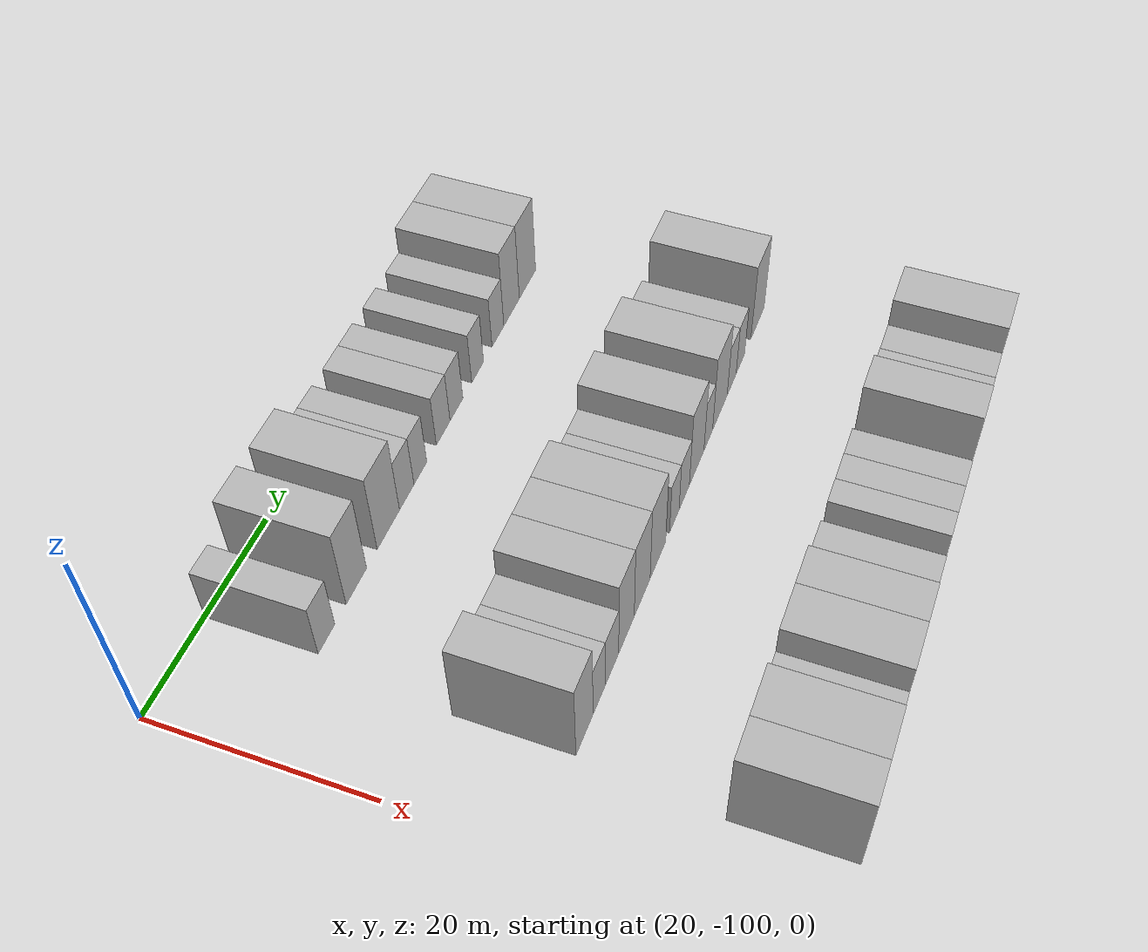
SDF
<sdf version="1.6">
 <world name="default">
  <model name="building_74">
   <static>1</static>
   <pose>25.0000 -88.8391 0 0.000000 0.000000 0.000000</pose>
   <link name="link">
    <pose>0 0 3.00 0 0 0</pose>
    <collision name="collision"><geometry><box><size>10.0000 2.8996 6.0000</size></box></geometry></collision>
    <visual name="visual">
     <cast_shadows>0</cast_shadows>
     <geometry><box><size>10.0000 2.8996 6.0000</size></box></geometry>
     <material>
      <script>
       <uri>model://HANNAS_wall/materials/scripts</uri>
       <uri>model://HANNAS_wall/materials/textures</uri>
       <name>vrc/HANNAS_wall</name>
      </script>
     </material>
    </visual>
   </link>
  </model>
  <model name="building_75">
   <static>1</static>
   <pose>25.0000 -83.5096 0 0.000000 0.000000 0.000000</pose>
   <link name="link">
    <pose>0 0 4.50 0 0 0</pose>
    <collision name="collision"><geometry><box><size>10.0000 3.7595 9.0000</size></box></geometry></collision>
    <visual name="visual">
     <cast_shadows>0</cast_shadows>
     <geometry><box><size>10.0000 3.7595 9.0000</size></box></geometry>
     <material>
      <script>
       <uri>model://HANNAS_wall/materials/scripts</uri>
       <uri>model://HANNAS_wall/materials/textures</uri>
       <name>vrc/HANNAS_wall</name>
      </script>
     </material>
    </visual>
   </link>
  </model>
  <model name="building_76">
   <static>1</static>
   <pose>25.0000 -77.4636 0 0.000000 0.000000 0.000000</pose>
   <link name="link">
    <pose>0 0 4.50 0 0 0</pose>
    <collision name="collision"><geometry><box><size>10.0000 4.3325 9.0000</size></box></geometry></collision>
    <visual name="visual">
     <cast_shadows>0</cast_shadows>
     <geometry><box><size>10.0000 4.3325 9.0000</size></box></geometry>
     <material>
      <script>
       <uri>model://HANNAS_wall/materials/scripts</uri>
       <uri>model://HANNAS_wall/materials/textures</uri>
       <name>vrc/HANNAS_wall</name>
      </script>
     </material>
    </visual>
   </link>
  </model>
  <model name="building_77">
   <static>1</static>
   <pose>25.0000 -73.8470 0 0.000000 0.000000 0.000000</pose>
   <link name="link">
    <pose>0 0 3.00 0 0 0</pose>
    <collision name="collision"><geometry><box><size>10.0000 2.9005 6.0000</size></box></geometry></collision>
    <visual name="visual">
     <cast_shadows>0</cast_shadows>
     <geometry><box><size>10.0000 2.9005 6.0000</size></box></geometry>
     <material>
      <script>
       <uri>model://HANNAS_wall/materials/scripts</uri>
       <uri>model://HANNAS_wall/materials/textures</uri>
       <name>vrc/HANNAS_wall</name>
      </script>
     </material>
    </visual>
   </link>
  </model>
  <model name="building_78">
   <static>1</static>
   <pose>25.0000 -71.0842 0 0.000000 0.000000 0.000000</pose>
   <link name="link">
    <pose>0 0 3.00 0 0 0</pose>
    <collision name="collision"><geometry><box><size>10.0000 2.6250 6.0000</size></box></geometry></collision>
    <visual name="visual">
     <cast_shadows>0</cast_shadows>
     <geometry><box><size>10.0000 2.6250 6.0000</size></box></geometry>
     <material>
      <script>
       <uri>model://HANNAS_wall/materials/scripts</uri>
       <uri>model://HANNAS_wall/materials/textures</uri>
       <name>vrc/HANNAS_wall</name>
      </script>
     </material>
    </visual>
   </link>
  </model>
  <model name="building_79">
   <static>1</static>
   <pose>25.0000 -66.2901 0 0.000000 0.000000 0.000000</pose>
   <link name="link">
    <pose>0 0 3.00 0 0 0</pose>
    <collision name="collision"><geometry><box><size>10.0000 2.9633 6.0000</size></box></geometry></collision>
    <visual name="visual">
     <cast_shadows>0</cast_shadows>
     <geometry><box><size>10.0000 2.9633 6.0000</size></box></geometry>
     <material>
      <script>
       <uri>model://HANNAS_wall/materials/scripts</uri>
       <uri>model://HANNAS_wall/materials/textures</uri>
       <name>vrc/HANNAS_wall</name>
      </script>
     </material>
    </visual>
   </link>
  </model>
  <model name="building_80">
   <static>1</static>
   <pose>25.0000 -63.4003 0 0.000000 0.000000 0.000000</pose>
   <link name="link">
    <pose>0 0 3.00 0 0 0</pose>
    <collision name="collision"><geometry><box><size>10.0000 2.8163 6.0000</size></box></geometry></collision>
    <visual name="visual">
     <cast_shadows>0</cast_shadows>
     <geometry><box><size>10.0000 2.8163 6.0000</size></box></geometry>
     <material>
      <script>
       <uri>model://HANNAS_wall/materials/scripts</uri>
       <uri>model://HANNAS_wall/materials/textures</uri>
       <name>vrc/HANNAS_wall</name>
      </script>
     </material>
    </visual>
   </link>
  </model>
  <model name="building_81">
   <static>1</static>
   <pose>25.0000 -58.6390 0 0.000000 0.000000 0.000000</pose>
   <link name="link">
    <pose>0 0 3.00 0 0 0</pose>
    <collision name="collision"><geometry><box><size>10.0000 2.7062 6.0000</size></box></geometry></collision>
    <visual name="visual">
     <cast_shadows>0</cast_shadows>
     <geometry><box><size>10.0000 2.7062 6.0000</size></box></geometry>
     <material>
      <script>
       <uri>model://HANNAS_wall/materials/scripts</uri>
       <uri>model://HANNAS_wall/materials/textures</uri>
       <name>vrc/HANNAS_wall</name>
      </script>
     </material>
    </visual>
   </link>
  </model>
  <model name="building_82">
   <static>1</static>
   <pose>25.0000 -53.8731 0 0.000000 0.000000 0.000000</pose>
   <link name="link">
    <pose>0 0 3.00 0 0 0</pose>
    <collision name="collision"><geometry><box><size>10.0000 2.8256 6.0000</size></box></geometry></collision>
    <visual name="visual">
     <cast_shadows>0</cast_shadows>
     <geometry><box><size>10.0000 2.8256 6.0000</size></box></geometry>
     <material>
      <script>
       <uri>model://HANNAS_wall/materials/scripts</uri>
       <uri>model://HANNAS_wall/materials/textures</uri>
       <name>vrc/HANNAS_wall</name>
      </script>
     </material>
    </visual>
   </link>
  </model>
  <model name="building_83">
   <static>1</static>
   <pose>25.0000 -50.5525 0 0.000000 0.000000 0.000000</pose>
   <link name="link">
    <pose>0 0 4.50 0 0 0</pose>
    <collision name="collision"><geometry><box><size>10.0000 3.8157 9.0000</size></box></geometry></collision>
    <visual name="visual">
     <cast_shadows>0</cast_shadows>
     <geometry><box><size>10.0000 3.8157 9.0000</size></box></geometry>
     <material>
      <script>
       <uri>model://HANNAS_wall/materials/scripts</uri>
       <uri>model://HANNAS_wall/materials/textures</uri>
       <name>vrc/HANNAS_wall</name>
      </script>
     </material>
    </visual>
   </link>
  </model>
  <model name="building_84">
   <static>1</static>
   <pose>25.0000 -46.5881 0 0.000000 0.000000 0.000000</pose>
   <link name="link">
    <pose>0 0 4.50 0 0 0</pose>
    <collision name="collision"><geometry><box><size>10.0000 4.1129 9.0000</size></box></geometry></collision>
    <visual name="visual">
     <cast_shadows>0</cast_shadows>
     <geometry><box><size>10.0000 4.1129 9.0000</size></box></geometry>
     <material>
      <script>
       <uri>model://HANNAS_wall/materials/scripts</uri>
       <uri>model://HANNAS_wall/materials/textures</uri>
       <name>vrc/HANNAS_wall</name>
      </script>
     </material>
    </visual>
   </link>
  </model>
  <model name="building_268">
   <static>1</static>
   <pose>47.0000 -89.8443 0 0.000000 0.000000 0.000000</pose>
   <link name="link">
    <pose>0 0 4.50 0 0 0</pose>
    <collision name="collision"><geometry><box><size>10.0000 3.6871 9.0000</size></box></geometry></collision>
    <visual name="visual">
     <cast_shadows>0</cast_shadows>
     <geometry><box><size>10.0000 3.6871 9.0000</size></box></geometry>
     <material>
      <script>
       <uri>model://HANNAS_wall/materials/scripts</uri>
       <uri>model://HANNAS_wall/materials/textures</uri>
       <name>vrc/HANNAS_wall</name>
      </script>
     </material>
    </visual>
   </link>
  </model>
  <model name="building_269">
   <static>1</static>
   <pose>47.0000 -86.6379 0 0.000000 0.000000 0.000000</pose>
   <link name="link">
    <pose>0 0 3.00 0 0 0</pose>
    <collision name="collision"><geometry><box><size>10.0000 2.7257 6.0000</size></box></geometry></collision>
    <visual name="visual">
     <cast_shadows>0</cast_shadows>
     <geometry><box><size>10.0000 2.7257 6.0000</size></box></geometry>
     <material>
      <script>
       <uri>model://HANNAS_wall/materials/scripts</uri>
       <uri>model://HANNAS_wall/materials/textures</uri>
       <name>vrc/HANNAS_wall</name>
      </script>
     </material>
    </visual>
   </link>
  </model>
  <model name="building_270">
   <static>1</static>
   <pose>47.0000 -83.7786 0 0.000000 0.000000 0.000000</pose>
   <link name="link">
    <pose>0 0 3.00 0 0 0</pose>
    <collision name="collision"><geometry><box><size>10.0000 2.9930 6.0000</size></box></geometry></collision>
    <visual name="visual">
     <cast_shadows>0</cast_shadows>
     <geometry><box><size>10.0000 2.9930 6.0000</size></box></geometry>
     <material>
      <script>
       <uri>model://HANNAS_wall/materials/scripts</uri>
       <uri>model://HANNAS_wall/materials/textures</uri>
       <name>vrc/HANNAS_wall</name>
      </script>
     </material>
    </visual>
   </link>
  </model>
  <model name="building_271">
   <static>1</static>
   <pose>47.0000 -80.4532 0 0.000000 0.000000 0.000000</pose>
   <link name="link">
    <pose>0 0 4.50 0 0 0</pose>
    <collision name="collision"><geometry><box><size>10.0000 3.6578 9.0000</size></box></geometry></collision>
    <visual name="visual">
     <cast_shadows>0</cast_shadows>
     <geometry><box><size>10.0000 3.6578 9.0000</size></box></geometry>
     <material>
      <script>
       <uri>model://HANNAS_wall/materials/scripts</uri>
       <uri>model://HANNAS_wall/materials/textures</uri>
       <name>vrc/HANNAS_wall</name>
      </script>
     </material>
    </visual>
   </link>
  </model>
  <model name="building_272">
   <static>1</static>
   <pose>47.0000 -76.6905 0 0.000000 0.000000 0.000000</pose>
   <link name="link">
    <pose>0 0 4.50 0 0 0</pose>
    <collision name="collision"><geometry><box><size>10.0000 3.8677 9.0000</size></box></geometry></collision>
    <visual name="visual">
     <cast_shadows>0</cast_shadows>
     <geometry><box><size>10.0000 3.8677 9.0000</size></box></geometry>
     <material>
      <script>
       <uri>model://HANNAS_wall/materials/scripts</uri>
       <uri>model://HANNAS_wall/materials/textures</uri>
       <name>vrc/HANNAS_wall</name>
      </script>
     </material>
    </visual>
   </link>
  </model>
  <model name="building_273">
   <static>1</static>
   <pose>47.0000 -72.7860 0 0.000000 0.000000 0.000000</pose>
   <link name="link">
    <pose>0 0 4.50 0 0 0</pose>
    <collision name="collision"><geometry><box><size>10.0000 3.9413 9.0000</size></box></geometry></collision>
    <visual name="visual">
     <cast_shadows>0</cast_shadows>
     <geometry><box><size>10.0000 3.9413 9.0000</size></box></geometry>
     <material>
      <script>
       <uri>model://HANNAS_wall/materials/scripts</uri>
       <uri>model://HANNAS_wall/materials/textures</uri>
       <name>vrc/HANNAS_wall</name>
      </script>
     </material>
    </visual>
   </link>
  </model>
  <model name="building_274">
   <static>1</static>
   <pose>47.0000 -68.5644 0 0.000000 0.000000 0.000000</pose>
   <link name="link">
    <pose>0 0 3.00 0 0 0</pose>
    <collision name="collision"><geometry><box><size>10.0000 2.5020 6.0000</size></box></geometry></collision>
    <visual name="visual">
     <cast_shadows>0</cast_shadows>
     <geometry><box><size>10.0000 2.5020 6.0000</size></box></geometry>
     <material>
      <script>
       <uri>model://HANNAS_wall/materials/scripts</uri>
       <uri>model://HANNAS_wall/materials/textures</uri>
       <name>vrc/HANNAS_wall</name>
      </script>
     </material>
    </visual>
   </link>
  </model>
  <model name="building_275">
   <static>1</static>
   <pose>47.0000 -65.9303 0 0.000000 0.000000 0.000000</pose>
   <link name="link">
    <pose>0 0 3.00 0 0 0</pose>
    <collision name="collision"><geometry><box><size>10.0000 2.7661 6.0000</size></box></geometry></collision>
    <visual name="visual">
     <cast_shadows>0</cast_shadows>
     <geometry><box><size>10.0000 2.7661 6.0000</size></box></geometry>
     <material>
      <script>
       <uri>model://HANNAS_wall/materials/scripts</uri>
       <uri>model://HANNAS_wall/materials/textures</uri>
       <name>vrc/HANNAS_wall</name>
      </script>
     </material>
    </visual>
   </link>
  </model>
  <model name="building_276">
   <static>1</static>
   <pose>47.0000 -62.5124 0 0.000000 0.000000 0.000000</pose>
   <link name="link">
    <pose>0 0 4.50 0 0 0</pose>
    <collision name="collision"><geometry><box><size>10.0000 4.0697 9.0000</size></box></geometry></collision>
    <visual name="visual">
     <cast_shadows>0</cast_shadows>
     <geometry><box><size>10.0000 4.0697 9.0000</size></box></geometry>
     <material>
      <script>
       <uri>model://HANNAS_wall/materials/scripts</uri>
       <uri>model://HANNAS_wall/materials/textures</uri>
       <name>vrc/HANNAS_wall</name>
      </script>
     </material>
    </visual>
   </link>
  </model>
  <model name="building_277">
   <static>1</static>
   <pose>47.0000 -59.2409 0 0.000000 0.000000 0.000000</pose>
   <link name="link">
    <pose>0 0 3.00 0 0 0</pose>
    <collision name="collision"><geometry><box><size>10.0000 2.4733 6.0000</size></box></geometry></collision>
    <visual name="visual">
     <cast_shadows>0</cast_shadows>
     <geometry><box><size>10.0000 2.4733 6.0000</size></box></geometry>
     <material>
      <script>
       <uri>model://HANNAS_wall/materials/scripts</uri>
       <uri>model://HANNAS_wall/materials/textures</uri>
       <name>vrc/HANNAS_wall</name>
      </script>
     </material>
    </visual>
   </link>
  </model>
  <model name="building_278">
   <static>1</static>
   <pose>47.0000 -55.8433 0 0.000000 0.000000 0.000000</pose>
   <link name="link">
    <pose>0 0 4.50 0 0 0</pose>
    <collision name="collision"><geometry><box><size>10.0000 4.3219 9.0000</size></box></geometry></collision>
    <visual name="visual">
     <cast_shadows>0</cast_shadows>
     <geometry><box><size>10.0000 4.3219 9.0000</size></box></geometry>
     <material>
      <script>
       <uri>model://HANNAS_wall/materials/scripts</uri>
       <uri>model://HANNAS_wall/materials/textures</uri>
       <name>vrc/HANNAS_wall</name>
      </script>
     </material>
    </visual>
   </link>
  </model>
  <model name="building_279">
   <static>1</static>
   <pose>47.0000 -52.3166 0 0.000000 0.000000 0.000000</pose>
   <link name="link">
    <pose>0 0 3.00 0 0 0</pose>
    <collision name="collision"><geometry><box><size>10.0000 2.7316 6.0000</size></box></geometry></collision>
    <visual name="visual">
     <cast_shadows>0</cast_shadows>
     <geometry><box><size>10.0000 2.7316 6.0000</size></box></geometry>
     <material>
      <script>
       <uri>model://HANNAS_wall/materials/scripts</uri>
       <uri>model://HANNAS_wall/materials/textures</uri>
       <name>vrc/HANNAS_wall</name>
      </script>
     </material>
    </visual>
   </link>
  </model>
  <model name="building_280">
   <static>1</static>
   <pose>47.0000 -49.6281 0 0.000000 0.000000 0.000000</pose>
   <link name="link">
    <pose>0 0 3.00 0 0 0</pose>
    <collision name="collision"><geometry><box><size>10.0000 2.6455 6.0000</size></box></geometry></collision>
    <visual name="visual">
     <cast_shadows>0</cast_shadows>
     <geometry><box><size>10.0000 2.6455 6.0000</size></box></geometry>
     <material>
      <script>
       <uri>model://HANNAS_wall/materials/scripts</uri>
       <uri>model://HANNAS_wall/materials/textures</uri>
       <name>vrc/HANNAS_wall</name>
      </script>
     </material>
    </visual>
   </link>
  </model>
  <model name="building_281">
   <static>1</static>
   <pose>47.0000 -44.1357 0 0.000000 0.000000 0.000000</pose>
   <link name="link">
    <pose>0 0 4.50 0 0 0</pose>
    <collision name="collision"><geometry><box><size>10.0000 4.3392 9.0000</size></box></geometry></collision>
    <visual name="visual">
     <cast_shadows>0</cast_shadows>
     <geometry><box><size>10.0000 4.3392 9.0000</size></box></geometry>
     <material>
      <script>
       <uri>model://HANNAS_wall/materials/scripts</uri>
       <uri>model://HANNAS_wall/materials/textures</uri>
       <name>vrc/HANNAS_wall</name>
      </script>
     </material>
    </visual>
   </link>
  </model>
  <model name="building_453">
   <static>1</static>
   <pose>69.0000 -90.9968 0 0.000000 0.000000 0.000000</pose>
   <link name="link">
    <pose>0 0 4.50 0 0 0</pose>
    <collision name="collision"><geometry><box><size>10.0000 3.6783 9.0000</size></box></geometry></collision>
    <visual name="visual">
     <cast_shadows>0</cast_shadows>
     <geometry><box><size>10.0000 3.6783 9.0000</size></box></geometry>
     <material>
      <script>
       <uri>model://HANNAS_wall/materials/scripts</uri>
       <uri>model://HANNAS_wall/materials/textures</uri>
       <name>vrc/HANNAS_wall</name>
      </script>
     </material>
    </visual>
   </link>
  </model>
  <model name="building_454">
   <static>1</static>
   <pose>69.0000 -86.9176 0 0.000000 0.000000 0.000000</pose>
   <link name="link">
    <pose>0 0 4.50 0 0 0</pose>
    <collision name="collision"><geometry><box><size>10.0000 4.4802 9.0000</size></box></geometry></collision>
    <visual name="visual">
     <cast_shadows>0</cast_shadows>
     <geometry><box><size>10.0000 4.4802 9.0000</size></box></geometry>
     <material>
      <script>
       <uri>model://HANNAS_wall/materials/scripts</uri>
       <uri>model://HANNAS_wall/materials/textures</uri>
       <name>vrc/HANNAS_wall</name>
      </script>
     </material>
    </visual>
   </link>
  </model>
  <model name="building_455">
   <static>1</static>
   <pose>69.0000 -83.1786 0 0.000000 0.000000 0.000000</pose>
   <link name="link">
    <pose>0 0 3.00 0 0 0</pose>
    <collision name="collision"><geometry><box><size>10.0000 2.9978 6.0000</size></box></geometry></collision>
    <visual name="visual">
     <cast_shadows>0</cast_shadows>
     <geometry><box><size>10.0000 2.9978 6.0000</size></box></geometry>
     <material>
      <script>
       <uri>model://HANNAS_wall/materials/scripts</uri>
       <uri>model://HANNAS_wall/materials/textures</uri>
       <name>vrc/HANNAS_wall</name>
      </script>
     </material>
    </visual>
   </link>
  </model>
  <model name="building_456">
   <static>1</static>
   <pose>69.0000 -79.5294 0 0.000000 0.000000 0.000000</pose>
   <link name="link">
    <pose>0 0 4.50 0 0 0</pose>
    <collision name="collision"><geometry><box><size>10.0000 4.3005 9.0000</size></box></geometry></collision>
    <visual name="visual">
     <cast_shadows>0</cast_shadows>
     <geometry><box><size>10.0000 4.3005 9.0000</size></box></geometry>
     <material>
      <script>
       <uri>model://HANNAS_wall/materials/scripts</uri>
       <uri>model://HANNAS_wall/materials/textures</uri>
       <name>vrc/HANNAS_wall</name>
      </script>
     </material>
    </visual>
   </link>
  </model>
  <model name="building_457">
   <static>1</static>
   <pose>69.0000 -75.5673 0 0.000000 0.000000 0.000000</pose>
   <link name="link">
    <pose>0 0 4.50 0 0 0</pose>
    <collision name="collision"><geometry><box><size>10.0000 3.6239 9.0000</size></box></geometry></collision>
    <visual name="visual">
     <cast_shadows>0</cast_shadows>
     <geometry><box><size>10.0000 3.6239 9.0000</size></box></geometry>
     <material>
      <script>
       <uri>model://HANNAS_wall/materials/scripts</uri>
       <uri>model://HANNAS_wall/materials/textures</uri>
       <name>vrc/HANNAS_wall</name>
      </script>
     </material>
    </visual>
   </link>
  </model>
  <model name="building_458">
   <static>1</static>
   <pose>69.0000 -70.3203 0 0.000000 0.000000 0.000000</pose>
   <link name="link">
    <pose>0 0 3.00 0 0 0</pose>
    <collision name="collision"><geometry><box><size>10.0000 2.8702 6.0000</size></box></geometry></collision>
    <visual name="visual">
     <cast_shadows>0</cast_shadows>
     <geometry><box><size>10.0000 2.8702 6.0000</size></box></geometry>
     <material>
      <script>
       <uri>model://HANNAS_wall/materials/scripts</uri>
       <uri>model://HANNAS_wall/materials/textures</uri>
       <name>vrc/HANNAS_wall</name>
      </script>
     </material>
    </visual>
   </link>
  </model>
  <model name="building_459">
   <static>1</static>
   <pose>69.0000 -65.6443 0 0.000000 0.000000 0.000000</pose>
   <link name="link">
    <pose>0 0 3.00 0 0 0</pose>
    <collision name="collision"><geometry><box><size>10.0000 2.4816 6.0000</size></box></geometry></collision>
    <visual name="visual">
     <cast_shadows>0</cast_shadows>
     <geometry><box><size>10.0000 2.4816 6.0000</size></box></geometry>
     <material>
      <script>
       <uri>model://HANNAS_wall/materials/scripts</uri>
       <uri>model://HANNAS_wall/materials/textures</uri>
       <name>vrc/HANNAS_wall</name>
      </script>
     </material>
    </visual>
   </link>
  </model>
  <model name="building_460">
   <static>1</static>
   <pose>69.0000 -63.0083 0 0.000000 0.000000 0.000000</pose>
   <link name="link">
    <pose>0 0 3.00 0 0 0</pose>
    <collision name="collision"><geometry><box><size>10.0000 2.7904 6.0000</size></box></geometry></collision>
    <visual name="visual">
     <cast_shadows>0</cast_shadows>
     <geometry><box><size>10.0000 2.7904 6.0000</size></box></geometry>
     <material>
      <script>
       <uri>model://HANNAS_wall/materials/scripts</uri>
       <uri>model://HANNAS_wall/materials/textures</uri>
       <name>vrc/HANNAS_wall</name>
      </script>
     </material>
    </visual>
   </link>
  </model>
  <model name="building_461">
   <static>1</static>
   <pose>69.0000 -60.2127 0 0.000000 0.000000 0.000000</pose>
   <link name="link">
    <pose>0 0 3.00 0 0 0</pose>
    <collision name="collision"><geometry><box><size>10.0000 2.8009 6.0000</size></box></geometry></collision>
    <visual name="visual">
     <cast_shadows>0</cast_shadows>
     <geometry><box><size>10.0000 2.8009 6.0000</size></box></geometry>
     <material>
      <script>
       <uri>model://HANNAS_wall/materials/scripts</uri>
       <uri>model://HANNAS_wall/materials/textures</uri>
       <name>vrc/HANNAS_wall</name>
      </script>
     </material>
    </visual>
   </link>
  </model>
  <model name="building_462">
   <static>1</static>
   <pose>69.0000 -54.9127 0 0.000000 0.000000 0.000000</pose>
   <link name="link">
    <pose>0 0 4.50 0 0 0</pose>
    <collision name="collision"><geometry><box><size>10.0000 3.7990 9.0000</size></box></geometry></collision>
    <visual name="visual">
     <cast_shadows>0</cast_shadows>
     <geometry><box><size>10.0000 3.7990 9.0000</size></box></geometry>
     <material>
      <script>
       <uri>model://HANNAS_wall/materials/scripts</uri>
       <uri>model://HANNAS_wall/materials/textures</uri>
       <name>vrc/HANNAS_wall</name>
      </script>
     </material>
    </visual>
   </link>
  </model>
  <model name="building_463">
   <static>1</static>
   <pose>69.0000 -50.5843 0 0.000000 0.000000 0.000000</pose>
   <link name="link">
    <pose>0 0 3.00 0 0 0</pose>
    <collision name="collision"><geometry><box><size>10.0000 2.8578 6.0000</size></box></geometry></collision>
    <visual name="visual">
     <cast_shadows>0</cast_shadows>
     <geometry><box><size>10.0000 2.8578 6.0000</size></box></geometry>
     <material>
      <script>
       <uri>model://HANNAS_wall/materials/scripts</uri>
       <uri>model://HANNAS_wall/materials/textures</uri>
       <name>vrc/HANNAS_wall</name>
      </script>
     </material>
    </visual>
   </link>
  </model>
  <model name="building_464">
   <static>1</static>
   <pose>69.0000 -47.6574 0 0.000000 0.000000 0.000000</pose>
   <link name="link">
    <pose>0 0 3.00 0 0 0</pose>
    <collision name="collision"><geometry><box><size>10.0000 2.9961 6.0000</size></box></geometry></collision>
    <visual name="visual">
     <cast_shadows>0</cast_shadows>
     <geometry><box><size>10.0000 2.9961 6.0000</size></box></geometry>
     <material>
      <script>
       <uri>model://HANNAS_wall/materials/scripts</uri>
       <uri>model://HANNAS_wall/materials/textures</uri>
       <name>vrc/HANNAS_wall</name>
      </script>
     </material>
    </visual>
   </link>
  </model>
  <model name="building_465">
   <static>1</static>
   <pose>69.0000 -43.9247 0 0.000000 0.000000 0.000000</pose>
   <link name="link">
    <pose>0 0 4.50 0 0 0</pose>
    <collision name="collision"><geometry><box><size>10.0000 4.4692 9.0000</size></box></geometry></collision>
    <visual name="visual">
     <cast_shadows>0</cast_shadows>
     <geometry><box><size>10.0000 4.4692 9.0000</size></box></geometry>
     <material>
      <script>
       <uri>model://HANNAS_wall/materials/scripts</uri>
       <uri>model://HANNAS_wall/materials/textures</uri>
       <name>vrc/HANNAS_wall</name>
      </script>
     </material>
    </visual>
   </link>
  </model>
 </world>
</sdf>
